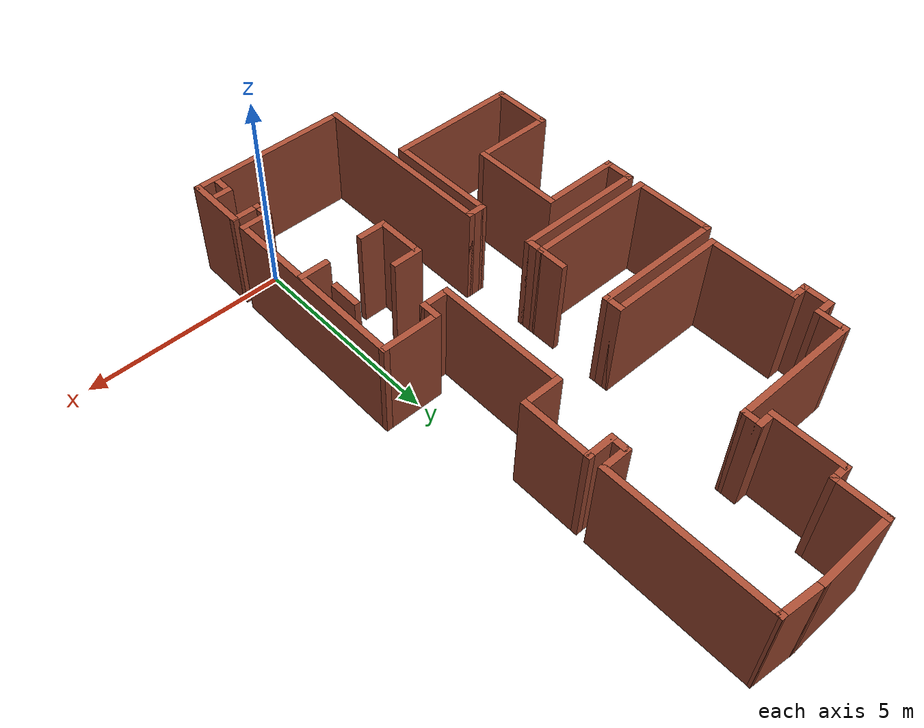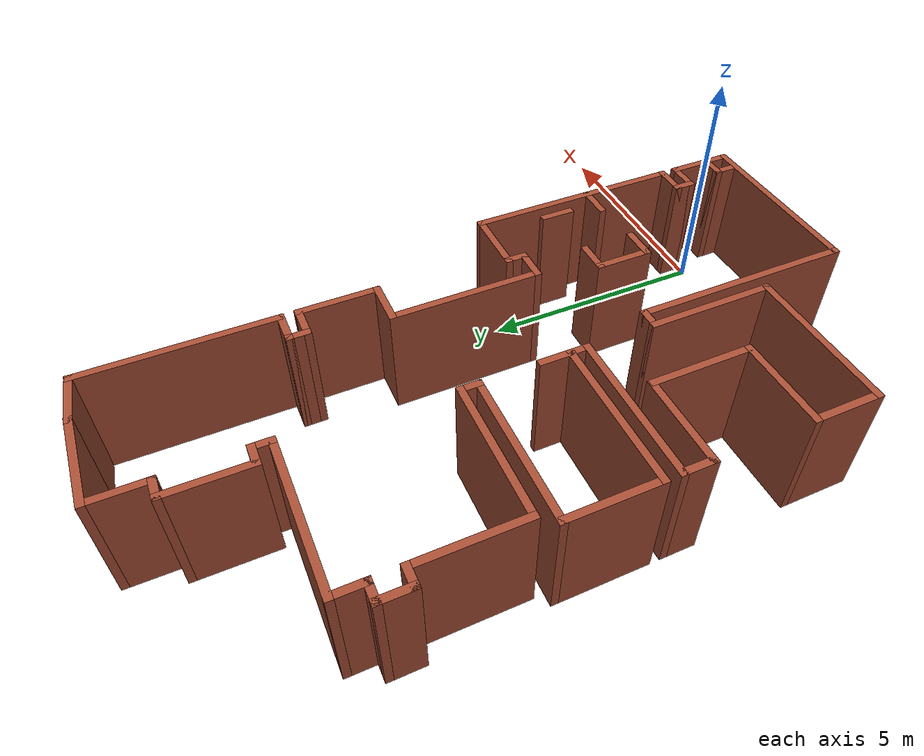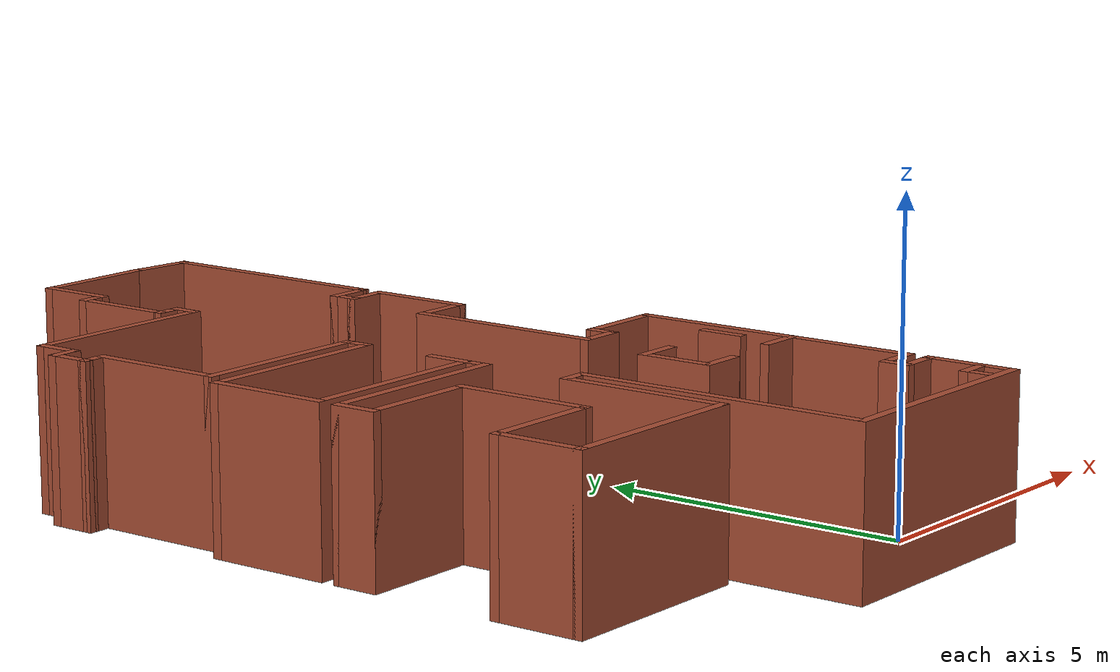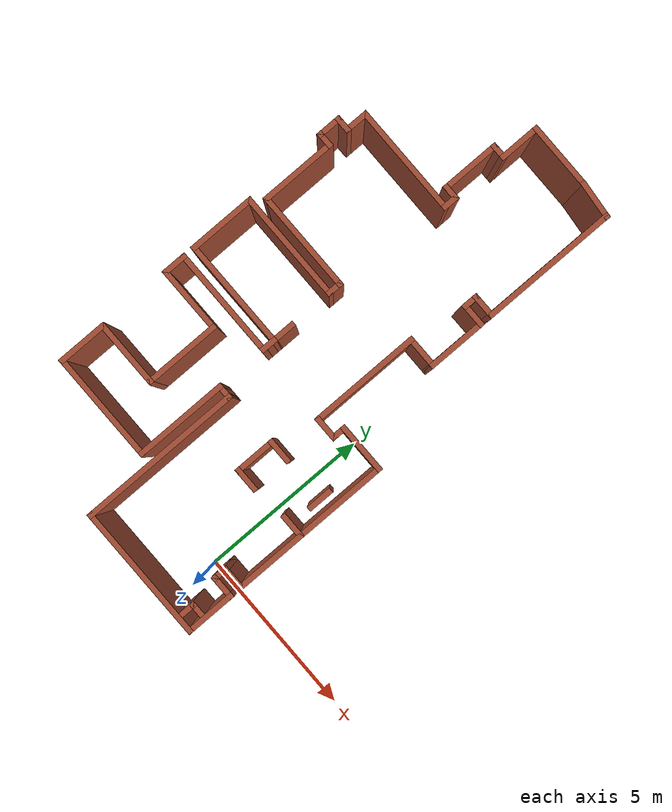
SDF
<?xml version='1.0'?>
<sdf version='1.6'>
  <model name='map_87'>
    <pose frame=''>-2.83378 6.21735 0 0 -0 0</pose>
    <link name='Wall_1'>
      <collision name='Wall_1_Collision'>
        <geometry>
          <box>
            <size>2 0.15 2.5</size>
          </box>
        </geometry>
        <pose frame=''>0 0 1.25 0 -0 0</pose>
      </collision>
      <visual name='Wall_1_Visual'>
        <pose frame=''>0 0 1.25 0 -0 0</pose>
        <geometry>
          <box>
            <size>2 0.15 2.5</size>
          </box>
        </geometry>
        <material>
          <script>
            <uri>file://media/materials/scripts/gazebo.material</uri>
            <name>Gazebo/Bricks</name>
          </script>
          <ambient>1 1 1 1</ambient>
        </material>
        <meta>
          <layer>0</layer>
        </meta>
      </visual>
      <pose frame=''>0.675 7.47145 0 0 -0 3.14159</pose>
    </link>
    <link name='Wall_10'>
      <collision name='Wall_10_Collision'>
        <geometry>
          <box>
            <size>0.75 0.15 2.5</size>
          </box>
        </geometry>
        <pose frame=''>0 0 1.25 0 -0 0</pose>
      </collision>
      <visual name='Wall_10_Visual'>
        <pose frame=''>0 0 1.25 0 -0 0</pose>
        <geometry>
          <box>
            <size>0.75 0.15 2.5</size>
          </box>
        </geometry>
        <material>
          <script>
            <uri>file://media/materials/scripts/gazebo.material</uri>
            <name>Gazebo/Bricks</name>
          </script>
          <ambient>1 1 1 1</ambient>
        </material>
        <meta>
          <layer>0</layer>
        </meta>
      </visual>
      <pose frame=''>-3.7 3.52146 0 0 -0 -1.5708</pose>
    </link>
    <link name='Wall_11'>
      <collision name='Wall_11_Collision'>
        <geometry>
          <box>
            <size>0.5 0.15 2.5</size>
          </box>
        </geometry>
        <pose frame=''>0 0 1.25 0 -0 0</pose>
      </collision>
      <visual name='Wall_11_Visual'>
        <pose frame=''>0 0 1.25 0 -0 0</pose>
        <geometry>
          <box>
            <size>0.5 0.15 2.5</size>
          </box>
        </geometry>
        <material>
          <script>
            <uri>file://media/materials/scripts/gazebo.material</uri>
            <name>Gazebo/Bricks</name>
          </script>
          <ambient>1 1 1 1</ambient>
        </material>
        <meta>
          <layer>0</layer>
        </meta>
      </visual>
      <pose frame=''>-3.525 3.22146 0 0 -0 0</pose>
    </link>
    <link name='Wall_14'>
      <collision name='Wall_14_Collision'>
        <geometry>
          <box>
            <size>2.25 0.15 2.5</size>
          </box>
        </geometry>
        <pose frame=''>0 0 1.25 0 -0 0</pose>
      </collision>
      <visual name='Wall_14_Visual'>
        <pose frame=''>0 0 1.25 0 -0 0</pose>
        <geometry>
          <box>
            <size>2.25 0.15 2.5</size>
          </box>
        </geometry>
        <material>
          <script>
            <uri>file://media/materials/scripts/gazebo.material</uri>
            <name>Gazebo/Bricks</name>
          </script>
          <ambient>1 1 1 1</ambient>
        </material>
        <meta>
          <layer>0</layer>
        </meta>
      </visual>
      <pose frame=''>-3.35 2.17145 0 0 -0 -1.5708</pose>
    </link>
    <link name='Wall_15'>
      <collision name='Wall_15_Collision'>
        <geometry>
          <box>
            <size>3 0.15 2.5</size>
          </box>
        </geometry>
        <pose frame=''>0 0 1.25 0 -0 0</pose>
      </collision>
      <visual name='Wall_15_Visual'>
        <pose frame=''>0 0 1.25 0 -0 0</pose>
        <geometry>
          <box>
            <size>3 0.15 2.5</size>
          </box>
        </geometry>
        <material>
          <script>
            <uri>file://media/materials/scripts/gazebo.material</uri>
            <name>Gazebo/Bricks</name>
          </script>
          <ambient>1 1 1 1</ambient>
        </material>
        <meta>
          <layer>0</layer>
        </meta>
      </visual>
      <pose frame=''>-1.925 1.12146 0 0 -0 0</pose>
    </link>
    <link name='Wall_16'>
      <collision name='Wall_16_Collision'>
        <geometry>
          <box>
            <size>0.5 0.15 2.5</size>
          </box>
        </geometry>
        <pose frame=''>0 0 1.25 0 -0 0</pose>
      </collision>
      <visual name='Wall_16_Visual'>
        <pose frame=''>0 0 1.25 0 -0 0</pose>
        <geometry>
          <box>
            <size>0.5 0.15 2.5</size>
          </box>
        </geometry>
        <material>
          <script>
            <uri>file://media/materials/scripts/gazebo.material</uri>
            <name>Gazebo/Bricks</name>
          </script>
          <ambient>1 1 1 1</ambient>
        </material>
        <meta>
          <layer>0</layer>
        </meta>
      </visual>
      <pose frame=''>-0.5 0.946455 0 0 -0 -1.5708</pose>
    </link>
    <link name='Wall_17'>
      <collision name='Wall_17_Collision'>
        <geometry>
          <box>
            <size>3.25 0.15 2.5</size>
          </box>
        </geometry>
        <pose frame=''>0 0 1.25 0 -0 0</pose>
      </collision>
      <visual name='Wall_17_Visual'>
        <pose frame=''>0 0 1.25 0 -0 0</pose>
        <geometry>
          <box>
            <size>3.25 0.15 2.5</size>
          </box>
        </geometry>
        <material>
          <script>
            <uri>file://media/materials/scripts/gazebo.material</uri>
            <name>Gazebo/Bricks</name>
          </script>
          <ambient>1 1 1 1</ambient>
        </material>
        <meta>
          <layer>0</layer>
        </meta>
      </visual>
      <pose frame=''>-2.05 0.771455 0 0 -0 3.14159</pose>
    </link>
    <link name='Wall_18'>
      <collision name='Wall_18_Collision'>
        <geometry>
          <box>
            <size>2 0.15 2.5</size>
          </box>
        </geometry>
        <pose frame=''>0 0 1.25 0 -0 0</pose>
      </collision>
      <visual name='Wall_18_Visual'>
        <pose frame=''>0 0 1.25 0 -0 0</pose>
        <geometry>
          <box>
            <size>2 0.15 2.5</size>
          </box>
        </geometry>
        <material>
          <script>
            <uri>file://media/materials/scripts/gazebo.material</uri>
            <name>Gazebo/Bricks</name>
          </script>
          <ambient>1 1 1 1</ambient>
        </material>
        <meta>
          <layer>0</layer>
        </meta>
      </visual>
      <pose frame=''>-3.6 -0.153545 0 0 -0 -1.5708</pose>
    </link>
    <link name='Wall_19'>
      <collision name='Wall_19_Collision'>
        <geometry>
          <box>
            <size>3.25 0.15 2.5</size>
          </box>
        </geometry>
        <pose frame=''>0 0 1.25 0 -0 0</pose>
      </collision>
      <visual name='Wall_19_Visual'>
        <pose frame=''>0 0 1.25 0 -0 0</pose>
        <geometry>
          <box>
            <size>3.25 0.15 2.5</size>
          </box>
        </geometry>
        <material>
          <script>
            <uri>file://media/materials/scripts/gazebo.material</uri>
            <name>Gazebo/Bricks</name>
          </script>
          <ambient>1 1 1 1</ambient>
        </material>
        <meta>
          <layer>0</layer>
        </meta>
      </visual>
      <pose frame=''>-2.05 -1.07855 0 0 -0 0</pose>
    </link>
    <link name='Wall_2'>
      <collision name='Wall_2_Collision'>
        <geometry>
          <box>
            <size>1.25 0.15 2.5</size>
          </box>
        </geometry>
        <pose frame=''>0 0 1.25 0 -0 0</pose>
      </collision>
      <visual name='Wall_2_Visual'>
        <pose frame=''>0 0 1.25 0 -0 0</pose>
        <geometry>
          <box>
            <size>1.25 0.15 2.5</size>
          </box>
        </geometry>
        <material>
          <script>
            <uri>file://media/materials/scripts/gazebo.material</uri>
            <name>Gazebo/Bricks</name>
          </script>
          <ambient>1 1 1 1</ambient>
        </material>
        <meta>
          <layer>0</layer>
        </meta>
      </visual>
      <pose frame=''>-0.25 6.92145 0 0 -0 -1.5708</pose>
    </link>
    <link name='Wall_20'>
      <collision name='Wall_20_Collision'>
        <geometry>
          <box>
            <size>0.5 0.15 2.5</size>
          </box>
        </geometry>
        <pose frame=''>0 0 1.25 0 -0 0</pose>
      </collision>
      <visual name='Wall_20_Visual'>
        <pose frame=''>0 0 1.25 0 -0 0</pose>
        <geometry>
          <box>
            <size>0.5 0.15 2.5</size>
          </box>
        </geometry>
        <material>
          <script>
            <uri>file://media/materials/scripts/gazebo.material</uri>
            <name>Gazebo/Bricks</name>
          </script>
          <ambient>1 1 1 1</ambient>
        </material>
        <meta>
          <layer>0</layer>
        </meta>
      </visual>
      <pose frame=''>-0.5 -1.25354 0 0 -0 -1.5708</pose>
    </link>
    <link name='Wall_21'>
      <collision name='Wall_21_Collision'>
        <geometry>
          <box>
            <size>3.25 0.15 2.5</size>
          </box>
        </geometry>
        <pose frame=''>0 0 1.25 0 -0 0</pose>
      </collision>
      <visual name='Wall_21_Visual'>
        <pose frame=''>0 0 1.25 0 -0 0</pose>
        <geometry>
          <box>
            <size>3.25 0.15 2.5</size>
          </box>
        </geometry>
        <material>
          <script>
            <uri>file://media/materials/scripts/gazebo.material</uri>
            <name>Gazebo/Bricks</name>
          </script>
          <ambient>1 1 1 1</ambient>
        </material>
        <meta>
          <layer>0</layer>
        </meta>
      </visual>
      <pose frame=''>-2.05 -1.42854 0 0 -0 3.14159</pose>
    </link>
    <link name='Wall_22'>
      <collision name='Wall_22_Collision'>
        <geometry>
          <box>
            <size>0.75 0.15 2.5</size>
          </box>
        </geometry>
        <pose frame=''>0 0 1.25 0 -0 0</pose>
      </collision>
      <visual name='Wall_22_Visual'>
        <pose frame=''>0 0 1.25 0 -0 0</pose>
        <geometry>
          <box>
            <size>0.75 0.15 2.5</size>
          </box>
        </geometry>
        <material>
          <script>
            <uri>file://media/materials/scripts/gazebo.material</uri>
            <name>Gazebo/Bricks</name>
          </script>
          <ambient>1 1 1 1</ambient>
        </material>
        <meta>
          <layer>0</layer>
        </meta>
      </visual>
      <pose frame=''>-3.6 -1.72854 0 0 -0 -1.5708</pose>
    </link>
    <link name='Wall_25'>
      <collision name='Wall_25_Collision'>
        <geometry>
          <box>
            <size>2 0.15 2.5</size>
          </box>
        </geometry>
        <pose frame=''>0 0 1.25 0 -0 0</pose>
      </collision>
      <visual name='Wall_25_Visual'>
        <pose frame=''>0 0 1.25 0 -0 0</pose>
        <geometry>
          <box>
            <size>2 0.15 2.5</size>
          </box>
        </geometry>
        <material>
          <script>
            <uri>file://media/materials/scripts/gazebo.material</uri>
            <name>Gazebo/Bricks</name>
          </script>
          <ambient>1 1 1 1</ambient>
        </material>
        <meta>
          <layer>0</layer>
        </meta>
      </visual>
      <pose frame=''>-2.675 -2.02854 0 0 -0 0</pose>
    </link>
    <link name='Wall_26'>
      <collision name='Wall_26_Collision'>
        <geometry>
          <box>
            <size>2.25 0.15 2.5</size>
          </box>
        </geometry>
        <pose frame=''>0 0 1.25 0 -0 0</pose>
      </collision>
      <visual name='Wall_26_Visual'>
        <pose frame=''>0 0 1.25 0 -0 0</pose>
        <geometry>
          <box>
            <size>2.25 0.15 2.5</size>
          </box>
        </geometry>
        <material>
          <script>
            <uri>file://media/materials/scripts/gazebo.material</uri>
            <name>Gazebo/Bricks</name>
          </script>
          <ambient>1 1 1 1</ambient>
        </material>
        <meta>
          <layer>0</layer>
        </meta>
      </visual>
      <pose frame=''>-1.75 -3.07855 0 0 -0 -1.5708</pose>
    </link>
    <link name='Wall_27'>
      <collision name='Wall_27_Collision'>
        <geometry>
          <box>
            <size>2 0.15 2.5</size>
          </box>
        </geometry>
        <pose frame=''>0 0 1.25 0 -0 0</pose>
      </collision>
      <visual name='Wall_27_Visual'>
        <pose frame=''>0 0 1.25 0 -0 0</pose>
        <geometry>
          <box>
            <size>2 0.15 2.5</size>
          </box>
        </geometry>
        <material>
          <script>
            <uri>file://media/materials/scripts/gazebo.material</uri>
            <name>Gazebo/Bricks</name>
          </script>
          <ambient>1 1 1 1</ambient>
        </material>
        <meta>
          <layer>0</layer>
        </meta>
      </visual>
      <pose frame=''>-2.675 -4.12854 0 0 -0 3.14159</pose>
    </link>
    <link name='Wall_28'>
      <collision name='Wall_28_Collision'>
        <geometry>
          <box>
            <size>1.5 0.15 2.5</size>
          </box>
        </geometry>
        <pose frame=''>0 0 1.25 0 -0 0</pose>
      </collision>
      <visual name='Wall_28_Visual'>
        <pose frame=''>0 0 1.25 0 -0 0</pose>
        <geometry>
          <box>
            <size>1.5 0.15 2.5</size>
          </box>
        </geometry>
        <material>
          <script>
            <uri>file://media/materials/scripts/gazebo.material</uri>
            <name>Gazebo/Bricks</name>
          </script>
          <ambient>1 1 1 1</ambient>
        </material>
        <meta>
          <layer>0</layer>
        </meta>
      </visual>
      <pose frame=''>-3.6 -4.80354 0 0 -0 -1.5708</pose>
    </link>
    <link name='Wall_29'>
      <collision name='Wall_29_Collision'>
        <geometry>
          <box>
            <size>3.25 0.15 2.5</size>
          </box>
        </geometry>
        <pose frame=''>0 0 1.25 0 -0 0</pose>
      </collision>
      <visual name='Wall_29_Visual'>
        <pose frame=''>0 0 1.25 0 -0 0</pose>
        <geometry>
          <box>
            <size>3.25 0.15 2.5</size>
          </box>
        </geometry>
        <material>
          <script>
            <uri>file://media/materials/scripts/gazebo.material</uri>
            <name>Gazebo/Bricks</name>
          </script>
          <ambient>1 1 1 1</ambient>
        </material>
        <meta>
          <layer>0</layer>
        </meta>
      </visual>
      <pose frame=''>-2.05 -5.47855 0 0 -0 0</pose>
    </link>
    <link name='Wall_3'>
      <collision name='Wall_3_Collision'>
        <geometry>
          <box>
            <size>0.5 0.15 2.5</size>
          </box>
        </geometry>
        <pose frame=''>0 0 1.25 0 -0 0</pose>
      </collision>
      <visual name='Wall_3_Visual'>
        <pose frame=''>0 0 1.25 0 -0 0</pose>
        <geometry>
          <box>
            <size>0.5 0.15 2.5</size>
          </box>
        </geometry>
        <material>
          <script>
            <uri>file://media/materials/scripts/gazebo.material</uri>
            <name>Gazebo/Bricks</name>
          </script>
          <ambient>1 1 1 1</ambient>
        </material>
        <meta>
          <layer>0</layer>
        </meta>
      </visual>
      <pose frame=''>-0.425 6.37146 0 0 -0 3.14159</pose>
    </link>
    <link name='Wall_30'>
      <collision name='Wall_30_Collision'>
        <geometry>
          <box>
            <size>2.75 0.15 2.5</size>
          </box>
        </geometry>
        <pose frame=''>0 0 1.25 0 -0 0</pose>
      </collision>
      <visual name='Wall_30_Visual'>
        <pose frame=''>0 0 1.25 0 -0 0</pose>
        <geometry>
          <box>
            <size>2.75 0.15 2.5</size>
          </box>
        </geometry>
        <material>
          <script>
            <uri>file://media/materials/scripts/gazebo.material</uri>
            <name>Gazebo/Bricks</name>
          </script>
          <ambient>1 1 1 1</ambient>
        </material>
        <meta>
          <layer>0</layer>
        </meta>
      </visual>
      <pose frame=''>-0.5 -4.17854 0 0 -0 1.5708</pose>
    </link>
    <link name='Wall_33'>
      <collision name='Wall_33_Collision'>
        <geometry>
          <box>
            <size>0.5 0.15 2.5</size>
          </box>
        </geometry>
        <pose frame=''>0 0 1.25 0 -0 0</pose>
      </collision>
      <visual name='Wall_33_Visual'>
        <pose frame=''>0 0 1.25 0 -0 0</pose>
        <geometry>
          <box>
            <size>0.5 0.15 2.5</size>
          </box>
        </geometry>
        <material>
          <script>
            <uri>file://media/materials/scripts/gazebo.material</uri>
            <name>Gazebo/Bricks</name>
          </script>
          <ambient>1 1 1 1</ambient>
        </material>
        <meta>
          <layer>0</layer>
        </meta>
      </visual>
      <pose frame=''>-0.325 -2.87854 0 0 -0 0</pose>
    </link>
    <link name='Wall_34'>
      <collision name='Wall_34_Collision'>
        <geometry>
          <box>
            <size>4.75 0.15 2.5</size>
          </box>
        </geometry>
        <pose frame=''>0 0 1.25 0 -0 0</pose>
      </collision>
      <visual name='Wall_34_Visual'>
        <pose frame=''>0 0 1.25 0 -0 0</pose>
        <geometry>
          <box>
            <size>4.75 0.15 2.5</size>
          </box>
        </geometry>
        <material>
          <script>
            <uri>file://media/materials/scripts/gazebo.material</uri>
            <name>Gazebo/Bricks</name>
          </script>
          <ambient>1 1 1 1</ambient>
        </material>
        <meta>
          <layer>0</layer>
        </meta>
      </visual>
      <pose frame=''>-0.15 -5.17854 0 0 -0 -1.5708</pose>
    </link>
    <link name='Wall_35'>
      <collision name='Wall_35_Collision'>
        <geometry>
          <box>
            <size>4 0.15 2.5</size>
          </box>
        </geometry>
        <pose frame=''>0 0 1.25 0 -0 0</pose>
      </collision>
      <visual name='Wall_35_Visual'>
        <pose frame=''>0 0 1.25 0 -0 0</pose>
        <geometry>
          <box>
            <size>4 0.15 2.5</size>
          </box>
        </geometry>
        <material>
          <script>
            <uri>file://media/materials/scripts/gazebo.material</uri>
            <name>Gazebo/Bricks</name>
          </script>
          <ambient>1 1 1 1</ambient>
        </material>
        <meta>
          <layer>0</layer>
        </meta>
      </visual>
      <pose frame=''>1.775 -7.47855 0 0 -0 0</pose>
    </link>
    <link name='Wall_36'>
      <collision name='Wall_36_Collision'>
        <geometry>
          <box>
            <size>1.5 0.15 2.5</size>
          </box>
        </geometry>
        <pose frame=''>0 0 1.25 0 -0 0</pose>
      </collision>
      <visual name='Wall_36_Visual'>
        <pose frame=''>0 0 1.25 0 -0 0</pose>
        <geometry>
          <box>
            <size>1.5 0.15 2.5</size>
          </box>
        </geometry>
        <material>
          <script>
            <uri>file://media/materials/scripts/gazebo.material</uri>
            <name>Gazebo/Bricks</name>
          </script>
          <ambient>1 1 1 1</ambient>
        </material>
        <meta>
          <layer>0</layer>
        </meta>
      </visual>
      <pose frame=''>3.7 -6.80354 0 0 -0 1.5708</pose>
    </link>
    <link name='Wall_37'>
      <collision name='Wall_37_Collision'>
        <geometry>
          <box>
            <size>0.75 0.15 2.5</size>
          </box>
        </geometry>
        <pose frame=''>0 0 1.25 0 -0 0</pose>
      </collision>
      <visual name='Wall_37_Visual'>
        <pose frame=''>0 0 1.25 0 -0 0</pose>
        <geometry>
          <box>
            <size>0.75 0.15 2.5</size>
          </box>
        </geometry>
        <material>
          <script>
            <uri>file://media/materials/scripts/gazebo.material</uri>
            <name>Gazebo/Bricks</name>
          </script>
          <ambient>1 1 1 1</ambient>
        </material>
        <meta>
          <layer>0</layer>
        </meta>
      </visual>
      <pose frame=''>3.4 -6.12854 0 0 -0 3.14159</pose>
    </link>
    <link name='Wall_38'>
      <collision name='Wall_38_Collision'>
        <geometry>
          <box>
            <size>0.5 0.15 2.5</size>
          </box>
        </geometry>
        <pose frame=''>0 0 1.25 0 -0 0</pose>
      </collision>
      <visual name='Wall_38_Visual'>
        <pose frame=''>0 0 1.25 0 -0 0</pose>
        <geometry>
          <box>
            <size>0.5 0.15 2.5</size>
          </box>
        </geometry>
        <material>
          <script>
            <uri>file://media/materials/scripts/gazebo.material</uri>
            <name>Gazebo/Bricks</name>
          </script>
          <ambient>1 1 1 1</ambient>
        </material>
        <meta>
          <layer>0</layer>
        </meta>
      </visual>
      <pose frame=''>3.1 -5.95355 0 0 -0 1.5708</pose>
    </link>
    <link name='Wall_39'>
      <collision name='Wall_39_Collision'>
        <geometry>
          <box>
            <size>0.75 0.15 2.5</size>
          </box>
        </geometry>
        <pose frame=''>0 0 1.25 0 -0 0</pose>
      </collision>
      <visual name='Wall_39_Visual'>
        <pose frame=''>0 0 1.25 0 -0 0</pose>
        <geometry>
          <box>
            <size>0.75 0.15 2.5</size>
          </box>
        </geometry>
        <material>
          <script>
            <uri>file://media/materials/scripts/gazebo.material</uri>
            <name>Gazebo/Bricks</name>
          </script>
          <ambient>1 1 1 1</ambient>
        </material>
        <meta>
          <layer>0</layer>
        </meta>
      </visual>
      <pose frame=''>3.4 -5.77855 0 0 -0 0</pose>
    </link>
    <link name='Wall_4'>
      <collision name='Wall_4_Collision'>
        <geometry>
          <box>
            <size>1.75 0.15 2.5</size>
          </box>
        </geometry>
        <pose frame=''>0 0 1.25 0 -0 0</pose>
      </collision>
      <visual name='Wall_4_Visual'>
        <pose frame=''>0 0 1.25 0 -0 0</pose>
        <geometry>
          <box>
            <size>1.75 0.15 2.5</size>
          </box>
        </geometry>
        <material>
          <script>
            <uri>file://media/materials/scripts/gazebo.material</uri>
            <name>Gazebo/Bricks</name>
          </script>
          <ambient>1 1 1 1</ambient>
        </material>
        <meta>
          <layer>0</layer>
        </meta>
      </visual>
      <pose frame=''>-0.6 5.57146 0 0 -0 -1.5708</pose>
    </link>
    <link name='Wall_40'>
      <collision name='Wall_40_Collision'>
        <geometry>
          <box>
            <size>4.75 0.15 2.5</size>
          </box>
        </geometry>
        <pose frame=''>0 0 1.25 0 -0 0</pose>
      </collision>
      <visual name='Wall_40_Visual'>
        <pose frame=''>0 0 1.25 0 -0 0</pose>
        <geometry>
          <box>
            <size>4.75 0.15 2.5</size>
          </box>
        </geometry>
        <material>
          <script>
            <uri>file://media/materials/scripts/gazebo.material</uri>
            <name>Gazebo/Bricks</name>
          </script>
          <ambient>1 1 1 1</ambient>
        </material>
        <meta>
          <layer>0</layer>
        </meta>
      </visual>
      <pose frame=''>3.7 -3.47854 0 0 -0 1.5708</pose>
    </link>
    <link name='Wall_41'>
      <collision name='Wall_41_Collision'>
        <geometry>
          <box>
            <size>1.5 0.15 2.5</size>
          </box>
        </geometry>
        <pose frame=''>0 0 1.25 0 -0 0</pose>
      </collision>
      <visual name='Wall_41_Visual'>
        <pose frame=''>0 0 1.25 0 -0 0</pose>
        <geometry>
          <box>
            <size>1.5 0.15 2.5</size>
          </box>
        </geometry>
        <material>
          <script>
            <uri>file://media/materials/scripts/gazebo.material</uri>
            <name>Gazebo/Bricks</name>
          </script>
          <ambient>1 1 1 1</ambient>
        </material>
        <meta>
          <layer>0</layer>
        </meta>
      </visual>
      <pose frame=''>3.025 -1.17854 0 0 -0 3.14159</pose>
    </link>
    <link name='Wall_42'>
      <collision name='Wall_42_Collision'>
        <geometry>
          <box>
            <size>0.5 0.15 2.5</size>
          </box>
        </geometry>
        <pose frame=''>0 0 1.25 0 -0 0</pose>
      </collision>
      <visual name='Wall_42_Visual'>
        <pose frame=''>0 0 1.25 0 -0 0</pose>
        <geometry>
          <box>
            <size>0.5 0.15 2.5</size>
          </box>
        </geometry>
        <material>
          <script>
            <uri>file://media/materials/scripts/gazebo.material</uri>
            <name>Gazebo/Bricks</name>
          </script>
          <ambient>1 1 1 1</ambient>
        </material>
        <meta>
          <layer>0</layer>
        </meta>
      </visual>
      <pose frame=''>2.35 -1.35354 0 0 -0 -1.5708</pose>
    </link>
    <link name='Wall_43'>
      <collision name='Wall_43_Collision'>
        <geometry>
          <box>
            <size>0.75 0.15 2.5</size>
          </box>
        </geometry>
        <pose frame=''>0 0 1.25 0 -0 0</pose>
      </collision>
      <visual name='Wall_43_Visual'>
        <pose frame=''>0 0 1.25 0 -0 0</pose>
        <geometry>
          <box>
            <size>0.75 0.15 2.5</size>
          </box>
        </geometry>
        <material>
          <script>
            <uri>file://media/materials/scripts/gazebo.material</uri>
            <name>Gazebo/Bricks</name>
          </script>
          <ambient>1 1 1 1</ambient>
        </material>
        <meta>
          <layer>0</layer>
        </meta>
      </visual>
      <pose frame=''>2.05 -1.52855 0 0 -0 3.14159</pose>
    </link>
    <link name='Wall_44'>
      <collision name='Wall_44_Collision'>
        <geometry>
          <box>
            <size>3.25 0.15 2.5</size>
          </box>
        </geometry>
        <pose frame=''>0 0 1.25 0 -0 0</pose>
      </collision>
      <visual name='Wall_44_Visual'>
        <pose frame=''>0 0 1.25 0 -0 0</pose>
        <geometry>
          <box>
            <size>3.25 0.15 2.5</size>
          </box>
        </geometry>
        <material>
          <script>
            <uri>file://media/materials/scripts/gazebo.material</uri>
            <name>Gazebo/Bricks</name>
          </script>
          <ambient>1 1 1 1</ambient>
        </material>
        <meta>
          <layer>0</layer>
        </meta>
      </visual>
      <pose frame=''>1.75 0.021455 0 0 -0 1.5708</pose>
    </link>
    <link name='Wall_45'>
      <collision name='Wall_45_Collision'>
        <geometry>
          <box>
            <size>1 0.15 2.5</size>
          </box>
        </geometry>
        <pose frame=''>0 0 1.25 0 -0 0</pose>
      </collision>
      <visual name='Wall_45_Visual'>
        <pose frame=''>0 0 1.25 0 -0 0</pose>
        <geometry>
          <box>
            <size>1 0.15 2.5</size>
          </box>
        </geometry>
        <material>
          <script>
            <uri>file://media/materials/scripts/gazebo.material</uri>
            <name>Gazebo/Bricks</name>
          </script>
          <ambient>1 1 1 1</ambient>
        </material>
        <meta>
          <layer>0</layer>
        </meta>
      </visual>
      <pose frame=''>2.175 1.57146 0 0 -0 0</pose>
    </link>
    <link name='Wall_46'>
      <collision name='Wall_46_Collision'>
        <geometry>
          <box>
            <size>1.75 0.15 2.5</size>
          </box>
        </geometry>
        <pose frame=''>0 0 1.25 0 -0 0</pose>
      </collision>
      <visual name='Wall_46_Visual'>
        <pose frame=''>0 0 1.25 0 -0 0</pose>
        <geometry>
          <box>
            <size>1.75 0.15 2.5</size>
          </box>
        </geometry>
        <material>
          <script>
            <uri>file://media/materials/scripts/gazebo.material</uri>
            <name>Gazebo/Bricks</name>
          </script>
          <ambient>1 1 1 1</ambient>
        </material>
        <meta>
          <layer>0</layer>
        </meta>
      </visual>
      <pose frame=''>2.6 2.37146 0 0 -0 1.5708</pose>
    </link>
    <link name='Wall_47'>
      <collision name='Wall_47_Collision'>
        <geometry>
          <box>
            <size>0.75 0.15 2.5</size>
          </box>
        </geometry>
        <pose frame=''>0 0 1.25 0 -0 0</pose>
      </collision>
      <visual name='Wall_47_Visual'>
        <pose frame=''>0 0 1.25 0 -0 0</pose>
        <geometry>
          <box>
            <size>0.75 0.15 2.5</size>
          </box>
        </geometry>
        <material>
          <script>
            <uri>file://media/materials/scripts/gazebo.material</uri>
            <name>Gazebo/Bricks</name>
          </script>
          <ambient>1 1 1 1</ambient>
        </material>
        <meta>
          <layer>0</layer>
        </meta>
      </visual>
      <pose frame=''>2.3 3.17145 0 0 -0 3.14159</pose>
    </link>
    <link name='Wall_48'>
      <collision name='Wall_48_Collision'>
        <geometry>
          <box>
            <size>0.5 0.15 2.5</size>
          </box>
        </geometry>
        <pose frame=''>0 0 1.25 0 -0 0</pose>
      </collision>
      <visual name='Wall_48_Visual'>
        <pose frame=''>0 0 1.25 0 -0 0</pose>
        <geometry>
          <box>
            <size>0.5 0.15 2.5</size>
          </box>
        </geometry>
        <material>
          <script>
            <uri>file://media/materials/scripts/gazebo.material</uri>
            <name>Gazebo/Bricks</name>
          </script>
          <ambient>1 1 1 1</ambient>
        </material>
        <meta>
          <layer>0</layer>
        </meta>
      </visual>
      <pose frame=''>2 3.34646 0 0 -0 1.5708</pose>
    </link>
    <link name='Wall_49'>
      <collision name='Wall_49_Collision'>
        <geometry>
          <box>
            <size>0.75 0.15 2.5</size>
          </box>
        </geometry>
        <pose frame=''>0 0 1.25 0 -0 0</pose>
      </collision>
      <visual name='Wall_49_Visual'>
        <pose frame=''>0 0 1.25 0 -0 0</pose>
        <geometry>
          <box>
            <size>0.75 0.15 2.5</size>
          </box>
        </geometry>
        <material>
          <script>
            <uri>file://media/materials/scripts/gazebo.material</uri>
            <name>Gazebo/Bricks</name>
          </script>
          <ambient>1 1 1 1</ambient>
        </material>
        <meta>
          <layer>0</layer>
        </meta>
      </visual>
      <pose frame=''>2.3 3.52146 0 0 -0 0</pose>
    </link>
    <link name='Wall_5'>
      <collision name='Wall_5_Collision'>
        <geometry>
          <box>
            <size>0.5 0.15 2.5</size>
          </box>
        </geometry>
        <pose frame=''>0 0 1.25 0 -0 0</pose>
      </collision>
      <visual name='Wall_5_Visual'>
        <pose frame=''>0 0 1.25 0 -0 0</pose>
        <geometry>
          <box>
            <size>0.5 0.15 2.5</size>
          </box>
        </geometry>
        <material>
          <script>
            <uri>file://media/materials/scripts/gazebo.material</uri>
            <name>Gazebo/Bricks</name>
          </script>
          <ambient>1 1 1 1</ambient>
        </material>
        <meta>
          <layer>0</layer>
        </meta>
      </visual>
      <pose frame=''>-0.425 4.77145 0 0 -0 0</pose>
    </link>
    <link name='Wall_50'>
      <collision name='Wall_50_Collision'>
        <geometry>
          <box>
            <size>4 0.15 2.5</size>
          </box>
        </geometry>
        <pose frame=''>0 0 1.25 0 -0 0</pose>
      </collision>
      <visual name='Wall_50_Visual'>
        <pose frame=''>0 0 1.25 0 -0 0</pose>
        <geometry>
          <box>
            <size>4 0.15 2.5</size>
          </box>
        </geometry>
        <material>
          <script>
            <uri>file://media/materials/scripts/gazebo.material</uri>
            <name>Gazebo/Bricks</name>
          </script>
          <ambient>1 1 1 1</ambient>
        </material>
        <meta>
          <layer>0</layer>
        </meta>
      </visual>
      <pose frame=''>2.6 5.44646 0 0 -0 1.5708</pose>
    </link>
    <link name='Wall_51'>
      <collision name='Wall_51_Collision'>
        <geometry>
          <box>
            <size>1.15499 0.15 2.5</size>
          </box>
        </geometry>
        <pose frame=''>0 0 1.25 0 -0 0</pose>
      </collision>
      <visual name='Wall_51_Visual'>
        <pose frame=''>0 0 1.25 0 -0 0</pose>
        <geometry>
          <box>
            <size>1.15499 0.15 2.5</size>
          </box>
        </geometry>
        <material>
          <script>
            <uri>file://media/materials/scripts/gazebo.material</uri>
            <name>Gazebo/Bricks</name>
          </script>
          <ambient>1 1 1 1</ambient>
        </material>
        <meta>
          <layer>0</layer>
        </meta>
      </visual>
      <pose frame=''>2.1 7.42145 0 0 -0 3.04192</pose>
    </link>
    <link name='Wall_53'>
      <collision name='Wall_53_Collision'>
        <geometry>
          <box>
            <size>0.75 0.15 2.5</size>
          </box>
        </geometry>
        <pose frame=''>0 0 1.25 0 -0 0</pose>
      </collision>
      <visual name='Wall_53_Visual'>
        <pose frame=''>0 0 1.25 0 -0 0</pose>
        <geometry>
          <box>
            <size>0.75 0.15 2.5</size>
          </box>
        </geometry>
        <material>
          <script>
            <uri>file://media/materials/scripts/gazebo.material</uri>
            <name>Gazebo/Bricks</name>
          </script>
          <ambient>1 1 1 1</ambient>
        </material>
        <meta>
          <layer>0</layer>
        </meta>
      </visual>
      <pose frame=''>1.72215 -2.80074 0 0 -0 3.14159</pose>
    </link>
    <link name='Wall_54'>
      <collision name='Wall_54_Collision'>
        <geometry>
          <box>
            <size>1.25 0.15 2.5</size>
          </box>
        </geometry>
        <pose frame=''>0 0 1.25 0 -0 0</pose>
      </collision>
      <visual name='Wall_54_Visual'>
        <pose frame=''>0 0 1.25 0 -0 0</pose>
        <geometry>
          <box>
            <size>1.25 0.15 2.5</size>
          </box>
        </geometry>
        <material>
          <script>
            <uri>file://media/materials/scripts/gazebo.material</uri>
            <name>Gazebo/Bricks</name>
          </script>
          <ambient>1 1 1 1</ambient>
        </material>
        <meta>
          <layer>0</layer>
        </meta>
      </visual>
      <pose frame=''>1.42214 -3.35074 0 0 -0 -1.5708</pose>
    </link>
    <link name='Wall_55'>
      <collision name='Wall_55_Collision'>
        <geometry>
          <box>
            <size>0.75 0.15 2.5</size>
          </box>
        </geometry>
        <pose frame=''>0 0 1.25 0 -0 0</pose>
      </collision>
      <visual name='Wall_55_Visual'>
        <pose frame=''>0 0 1.25 0 -0 0</pose>
        <geometry>
          <box>
            <size>0.75 0.15 2.5</size>
          </box>
        </geometry>
        <material>
          <script>
            <uri>file://media/materials/scripts/gazebo.material</uri>
            <name>Gazebo/Bricks</name>
          </script>
          <ambient>1 1 1 1</ambient>
        </material>
        <meta>
          <layer>0</layer>
        </meta>
      </visual>
      <pose frame=''>1.72215 -3.90074 0 0 -0 0</pose>
    </link>
    <link name='Wall_57'>
      <collision name='Wall_57_Collision'>
        <geometry>
          <box>
            <size>0.75 0.15 2.5</size>
          </box>
        </geometry>
        <pose frame=''>0 0 1.25 0 -0 0</pose>
      </collision>
      <visual name='Wall_57_Visual'>
        <pose frame=''>0 0 1.25 0 -0 0</pose>
        <geometry>
          <box>
            <size>0.75 0.15 2.5</size>
          </box>
        </geometry>
        <material>
          <script>
            <uri>file://media/materials/scripts/gazebo.material</uri>
            <name>Gazebo/Bricks</name>
          </script>
          <ambient>1 1 1 1</ambient>
        </material>
        <meta>
          <layer>0</layer>
        </meta>
      </visual>
      <pose frame=''>3.37555 -3.78575 0 0 -0 3.14159</pose>
    </link>
    <link name='Wall_59'>
      <collision name='Wall_59_Collision'>
        <geometry>
          <box>
            <size>0.75 0.15 2.5</size>
          </box>
        </geometry>
        <pose frame=''>0 0 1.25 0 -0 0</pose>
      </collision>
      <visual name='Wall_59_Visual'>
        <pose frame=''>0 0 1.25 0 -0 0</pose>
        <geometry>
          <box>
            <size>0.75 0.15 2.5</size>
          </box>
        </geometry>
        <material>
          <script>
            <uri>file://media/materials/scripts/gazebo.material</uri>
            <name>Gazebo/Bricks</name>
          </script>
          <ambient>1 1 1 1</ambient>
        </material>
        <meta>
          <layer>0</layer>
        </meta>
      </visual>
      <pose frame=''>3.32376 -2.81931 0 0 -0 -1.5708</pose>
    </link>
    <link name='Wall_6'>
      <collision name='Wall_6_Collision'>
        <geometry>
          <box>
            <size>0.5 0.15 2.5</size>
          </box>
        </geometry>
        <pose frame=''>0 0 1.25 0 -0 0</pose>
      </collision>
      <visual name='Wall_6_Visual'>
        <pose frame=''>0 0 1.25 0 -0 0</pose>
        <geometry>
          <box>
            <size>0.5 0.15 2.5</size>
          </box>
        </geometry>
        <material>
          <script>
            <uri>file://media/materials/scripts/gazebo.material</uri>
            <name>Gazebo/Bricks</name>
          </script>
          <ambient>1 1 1 1</ambient>
        </material>
        <meta>
          <layer>0</layer>
        </meta>
      </visual>
      <pose frame=''>-0.25 4.59645 0 0 -0 -1.5708</pose>
    </link>
    <link name='Wall_61'>
      <collision name='Wall_61_Collision'>
        <geometry>
          <box>
            <size>0.5 0.15 2.5</size>
          </box>
        </geometry>
        <pose frame=''>0 0 1.25 0 -0 0</pose>
      </collision>
      <visual name='Wall_61_Visual'>
        <pose frame=''>0 0 1.25 0 -0 0</pose>
        <geometry>
          <box>
            <size>0.5 0.15 2.5</size>
          </box>
        </geometry>
        <material>
          <script>
            <uri>file://media/materials/scripts/gazebo.material</uri>
            <name>Gazebo/Bricks</name>
          </script>
          <ambient>1 1 1 1</ambient>
        </material>
        <meta>
          <layer>0</layer>
        </meta>
      </visual>
      <pose frame=''>3.43019 -6.98702 0 0 -0 3.14159</pose>
    </link>
    <link name='Wall_62'>
      <collision name='Wall_62_Collision'>
        <geometry>
          <box>
            <size>0.5 0.15 2.5</size>
          </box>
        </geometry>
        <pose frame=''>0 0 1.25 0 -0 0</pose>
      </collision>
      <visual name='Wall_62_Visual'>
        <pose frame=''>0 0 1.25 0 -0 0</pose>
        <geometry>
          <box>
            <size>0.5 0.15 2.5</size>
          </box>
        </geometry>
        <material>
          <script>
            <uri>file://media/materials/scripts/gazebo.material</uri>
            <name>Gazebo/Bricks</name>
          </script>
          <ambient>1 1 1 1</ambient>
        </material>
        <meta>
          <layer>0</layer>
        </meta>
      </visual>
      <pose frame=''>3.25519 -7.16202 0 0 -0 -1.5708</pose>
    </link>
    <link name='Wall_66'>
      <collision name='Wall_66_Collision'>
        <geometry>
          <box>
            <size>0.75 0.15 2.5</size>
          </box>
        </geometry>
        <pose frame=''>0 0 1.25 0 -0 0</pose>
      </collision>
      <visual name='Wall_66_Visual'>
        <pose frame=''>0 0 1.25 0 -0 0</pose>
        <geometry>
          <box>
            <size>0.75 0.15 2.5</size>
          </box>
        </geometry>
        <material>
          <script>
            <uri>file://media/materials/scripts/gazebo.material</uri>
            <name>Gazebo/Bricks</name>
          </script>
          <ambient>1 1 1 1</ambient>
        </material>
        <meta>
          <layer>0</layer>
        </meta>
      </visual>
      <pose frame=''>-0.5 -0.778545 0 0 -0 1.5708</pose>
    </link>
    <link name='Wall_7'>
      <collision name='Wall_7_Collision'>
        <geometry>
          <box>
            <size>3.25 0.15 2.5</size>
          </box>
        </geometry>
        <pose frame=''>0 0 1.25 0 -0 0</pose>
      </collision>
      <visual name='Wall_7_Visual'>
        <pose frame=''>0 0 1.25 0 -0 0</pose>
        <geometry>
          <box>
            <size>3.25 0.15 2.5</size>
          </box>
        </geometry>
        <material>
          <script>
            <uri>file://media/materials/scripts/gazebo.material</uri>
            <name>Gazebo/Bricks</name>
          </script>
          <ambient>1 1 1 1</ambient>
        </material>
        <meta>
          <layer>0</layer>
        </meta>
      </visual>
      <pose frame=''>-1.8 4.42145 0 0 -0 3.14159</pose>
    </link>
    <link name='Wall_8'>
      <collision name='Wall_8_Collision'>
        <geometry>
          <box>
            <size>0.75 0.15 2.5</size>
          </box>
        </geometry>
        <pose frame=''>0 0 1.25 0 -0 0</pose>
      </collision>
      <visual name='Wall_8_Visual'>
        <pose frame=''>0 0 1.25 0 -0 0</pose>
        <geometry>
          <box>
            <size>0.75 0.15 2.5</size>
          </box>
        </geometry>
        <material>
          <script>
            <uri>file://media/materials/scripts/gazebo.material</uri>
            <name>Gazebo/Bricks</name>
          </script>
          <ambient>1 1 1 1</ambient>
        </material>
        <meta>
          <layer>0</layer>
        </meta>
      </visual>
      <pose frame=''>-3.35 4.12146 0 0 -0 -1.5708</pose>
    </link>
    <link name='Wall_9'>
      <collision name='Wall_9_Collision'>
        <geometry>
          <box>
            <size>0.5 0.15 2.5</size>
          </box>
        </geometry>
        <pose frame=''>0 0 1.25 0 -0 0</pose>
      </collision>
      <visual name='Wall_9_Visual'>
        <pose frame=''>0 0 1.25 0 -0 0</pose>
        <geometry>
          <box>
            <size>0.5 0.15 2.5</size>
          </box>
        </geometry>
        <material>
          <script>
            <uri>file://media/materials/scripts/gazebo.material</uri>
            <name>Gazebo/Bricks</name>
          </script>
          <ambient>1 1 1 1</ambient>
        </material>
        <meta>
          <layer>0</layer>
        </meta>
      </visual>
      <pose frame=''>-3.525 3.82145 0 0 -0 3.14159</pose>
    </link>
    <static>1</static>
  </model>
</sdf>
